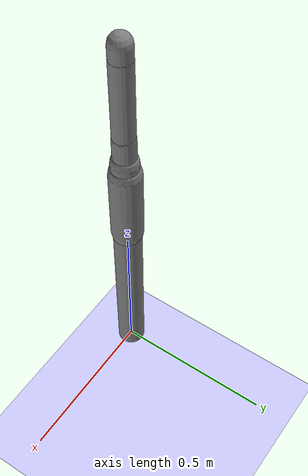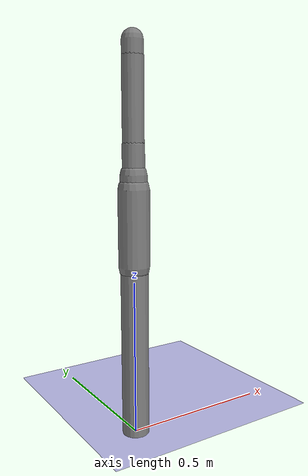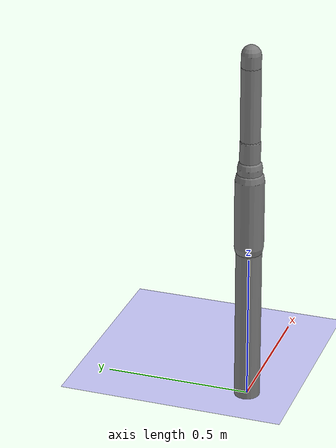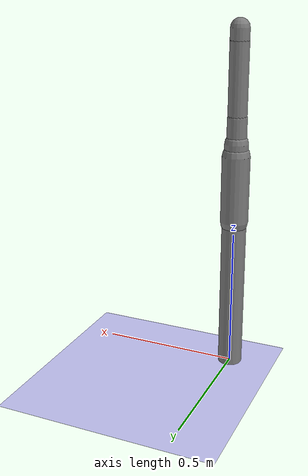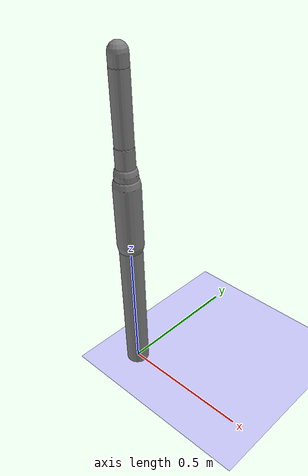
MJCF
<?xml version='1.0' encoding='UTF-8'?>
<mujoco model="robot_model">
  <worldbody>
    <light name="light" pos="0 -3 10" dir="0 0.5 -1" diffuse=".8 .8 .8" specular="0.1 0.1 0.1"/>
    <geom name="floor" type="plane" size="10.0 10.0 0.1" pos="0 0 0" rgba="0.8 0.8 1 1" contype="2" conaffinity="1"/>
    <body name="limb0" pos="0 0 0">
      <geom type="capsule" fromto="0 0 0 0 0 0.6" size="0.0434492427361072" density="882.5731364453118" contype="1" conaffinity="2"/>
      <site type="sphere" size="0.01" name="limb0_site0" pos="0 0 0.3879865204841603"/>
      <freejoint name="limb0_root"/>
      <body name="limb1" pos="0 0 0.3879865204841603">
        <geom type="capsule" fromto="0 0 0 0 0 0.2639757366326131" size="0.03303782304059255" density="616.6153958948047" contype="1" conaffinity="2"/>
        <site type="sphere" size="0.01" name="limb1_site0" pos="0 0 0.16469519644951955"/>
        <site type="sphere" size="0.01" name="limb1_site1" pos="0 0 0.10105994540977413"/>
        <site type="sphere" size="0.01" name="limb1_site2" pos="0 0 0.25148649137372964"/>
        <body name="limb2" pos="0 0 0.16469519644951955">
          <geom type="capsule" fromto="0 0 0 0 0 0.23785756650714102" size="0.049138871714439904" density="645.8772761445443" contype="1" conaffinity="2"/>
          <joint name="joint_limb1_limb2_0" type="hinge" axis="0 1 0" range="-66.9652511213398 66.9652511213398" damping="5.0"/>
        </body>
        <body name="limb3" pos="0 0 0.10105994540977413">
          <geom type="capsule" fromto="0 0 0 0 0 0.3449366956007403" size="0.04182995516077146" density="888.638751137447" contype="1" conaffinity="2"/>
          <site type="sphere" size="0.01" name="limb3_site0" pos="0 0 0.34476469369601037"/>
          <site type="sphere" size="0.01" name="limb3_site1" pos="0 0 0.22417686865828207"/>
          <site type="sphere" size="0.01" name="limb3_site2" pos="0 0 0.22851488847648382"/>
          <body name="limb4" pos="0 0 0.34476469369601037">
            <geom type="capsule" fromto="0 0 0 0 0 0.38689637571819735" size="0.03296585503229504" density="787.6117064878987" contype="1" conaffinity="2"/>
            <joint name="joint_limb3_limb4_0" type="hinge" axis="0 1 0" range="-97.60316524447805 97.60316524447805" damping="5.0"/>
          </body>
          <body name="limb5" pos="0 0 0.22417686865828207">
            <geom type="capsule" fromto="0 0 0 0 0 0.2102868528065015" size="0.03451406520881031" density="566.487314585425" contype="1" conaffinity="2"/>
            <joint name="joint_limb3_limb5_0" type="hinge" axis="0 1 0" range="-105.45232959569843 105.45232959569843" damping="5.0"/>
          </body>
          <body name="limb6" pos="0 0 0.22851488847648382">
            <geom type="capsule" fromto="0 0 0 0 0 0.46069774576177897" size="0.0332704348730845" density="1124.59993360464" contype="1" conaffinity="2"/>
            <joint name="joint_limb3_limb6_0" type="hinge" axis="0 1 0" range="-82.9398742241018 82.9398742241018" damping="5.0"/>
          </body>
          <joint name="joint_limb1_limb3_0" type="hinge" axis="0 1 0" range="-84.37282476408203 84.37282476408203" damping="5.0"/>
        </body>
        <body name="limb7" pos="0 0 0.25148649137372964">
          <geom type="capsule" fromto="0 0 0 0 0 0.4738718589997116" size="0.028117539679558608" density="1048.624160764936" contype="1" conaffinity="2"/>
          <site type="sphere" size="0.01" name="limb7_site0" pos="0 0 0.24269305539982175"/>
          <body name="limb8" pos="0 0 0.24269305539982175">
            <geom type="capsule" fromto="0 0 0 0 0 0.1797215636428" size="0.026091798513952557" density="745.8119714770129" contype="1" conaffinity="2"/>
            <joint name="joint_limb7_limb8_0" type="hinge" axis="1 0 0" range="-42.15190616583611 42.15190616583611" damping="5.0"/>
          </body>
          <joint name="joint_limb1_limb7_0" type="hinge" axis="0 1 0" range="-81.5251890423631 81.5251890423631" damping="5.0"/>
        </body>
        <joint name="joint_limb0_limb1_0" type="hinge" axis="0 1 0" range="-89.53684670583189 89.53684670583189" damping="5.0"/>
      </body>
    </body>
  </worldbody>
  <actuator>
    <position name="position_actuator_joint_limb0_limb1_0" joint="joint_limb0_limb1_0" gear="1.1522482362826674" inheritrange="1" kp="10.0"/>
    <position name="position_actuator_joint_limb1_limb2_0" joint="joint_limb1_limb2_0" gear="1.0628172104046523" inheritrange="1" kp="10.0"/>
    <position name="position_actuator_joint_limb1_limb3_0" joint="joint_limb1_limb3_0" gear="2.0" inheritrange="1" kp="10.0"/>
    <position name="position_actuator_joint_limb3_limb4_0" joint="joint_limb3_limb4_0" gear="1.7459471619076385" inheritrange="1" kp="10.0"/>
    <position name="position_actuator_joint_limb3_limb5_0" joint="joint_limb3_limb5_0" gear="1.0181191580428375" inheritrange="1" kp="10.0"/>
    <position name="position_actuator_joint_limb3_limb6_0" joint="joint_limb3_limb6_0" gear="1.8192611440742856" inheritrange="1" kp="10.0"/>
    <position name="position_actuator_joint_limb1_limb7_0" joint="joint_limb1_limb7_0" gear="1.4267616460679875" inheritrange="1" kp="10.0"/>
    <position name="position_actuator_joint_limb7_limb8_0" joint="joint_limb7_limb8_0" gear="1.5515760021784972" inheritrange="1" kp="10.0"/>
  </actuator>
</mujoco>
